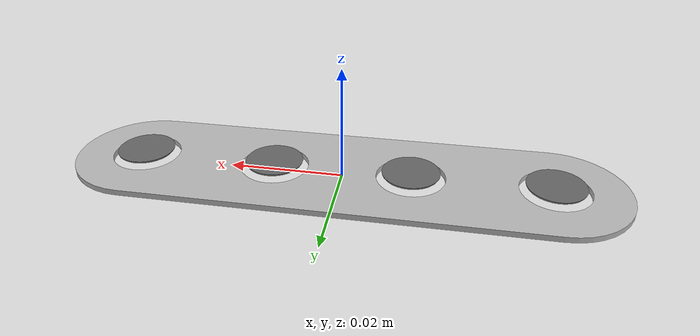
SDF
<?xml version="1.0" ?>
<sdf version="1.6">
  <model name="top_shell">
    <allow_auto_disable>true</allow_auto_disable>

    <link name="base_link">
      <inertial auto="true"/>

      <visual name="shell_visual">
        <geometry>
          <mesh>
            <uri>model://battery_module/meshes/visual/top_shell.glb</uri>
          </mesh>
        </geometry>
      </visual>

      <collision name="vg_2_collision">
        <density>2700</density>
        <geometry>
          <mesh>
            <uri>model://battery_module/meshes/collision/top_shell_vg_2.stl</uri>
          </mesh>
        </geometry>
      </collision>

      <collision name="vg_4_collision">
        <density>2700</density>
        <geometry>
          <mesh>
            <uri>model://battery_module/meshes/collision/top_shell_vg_4.stl</uri>
          </mesh>
        </geometry>
      </collision>

      <sensor name='contact_sensor' type='contact'>
        <update_rate>5</update_rate>
        <contact>
          <collision>vg_2_collision</collision>
        </contact>
      </sensor>

    </link>

    <link name="bead_1_link">
      <inertial auto="true"/>
      <visual name="bead_visual_1">
        <pose>-0.036 0 0.002 0 0 0</pose>
        <geometry>
          <mesh>
            <uri>model://battery_module/meshes/visual/weld_bead.stl</uri>
          </mesh>
        </geometry>
        <material>
          <diffuse>0.4 0.4 0.4 0.0</diffuse>
        </material>
      </visual>

      <collision name="bead_collision_1">
        <density>1</density>
        <pose>-0.036 0 0.003 0 0 0</pose>
        <geometry>
          <cylinder>
            <radius>0.006</radius>
            <length>0.002</length>
          </cylinder>
        </geometry>
      </collision>
    </link>

    <link name="bead_2_link">
      <inertial auto="true"/>
      <visual name="bead_visual_2">
        <pose>-0.012 0 0.002 0 0 0</pose>
        <geometry>
          <mesh>
            <uri>model://battery_module/meshes/visual/weld_bead.stl</uri>
          </mesh>
        </geometry>
        <material>
          <diffuse>0.4 0.4 0.4 0.0</diffuse>
        </material>
      </visual>

      <collision name="bead_collision_2">
        <density>1</density>
        <pose>-0.012 0 0.003 0 0 0</pose>
        <geometry>
          <cylinder>
            <radius>0.006</radius>
            <length>0.002</length>
          </cylinder>
        </geometry>
      </collision>
    </link>

    <link name="bead_3_link">
      <inertial auto="true"/>
      <visual name="bead_visual_3">
        <pose>0.012 0 0.002 0 0 0</pose>
        <geometry>
          <mesh>
            <uri>model://battery_module/meshes/visual/weld_bead.stl</uri>
          </mesh>
        </geometry>
        <material>
          <diffuse>0.4 0.4 0.4 0.0</diffuse>
        </material>
      </visual>

      <collision name="bead_collision_3">
        <density>1</density>
        <pose>0.012 0 0.003 0 0 0</pose>
        <geometry>
          <cylinder>
            <radius>0.006</radius>
            <length>0.002</length>
          </cylinder>
        </geometry>
      </collision>
    </link>

    <link name="bead_4_link">
      <inertial auto="true"/>
      <visual name="bead_visual_4">
        <pose>0.036 0 0.002 0 0 0</pose>
        <geometry>
          <mesh>
            <uri>model://battery_module/meshes/visual/weld_bead.stl</uri>
          </mesh>
        </geometry>
        <material>
          <diffuse>0.4 0.4 0.4 0.0</diffuse>
        </material>
      </visual>

      <collision name="bead_collision_4">
        <density>1</density>
        <pose>0.036 0 0.003 0 0 0</pose>
        <geometry>
          <cylinder>
            <radius>0.006</radius>
            <length>0.002</length>
          </cylinder>
        </geometry>
      </collision>
    </link>

    <joint name="bead_1_joint" type="fixed">
      <parent>base_link</parent>
      <child>bead_1_link</child>
    </joint>

    <joint name="bead_2_joint" type="fixed">
      <parent>base_link</parent>
      <child>bead_2_link</child>
    </joint>

    <joint name="bead_3_joint" type="fixed">
      <parent>base_link</parent>
      <child>bead_3_link</child>
    </joint>

    <joint name="bead_4_joint" type="fixed">
      <parent>base_link</parent>
      <child>bead_4_link</child>
    </joint>

    <link name="slot_1_link">
      <inertial auto="true"/>
      <pose> -0.036 0 0.005 0 0 0</pose>
      <collision name="collision">
        <density>1</density>
        <geometry>
          <cylinder>
            <radius>0.005</radius>
            <length>0.001</length>
          </cylinder>
        </geometry>
      </collision>
      <sensor name='collision_detector' type='contact'>
        <contact>
          <collision>collision</collision>
        </contact>
      </sensor>
    </link>

    <link name="slot_4_link">
      <inertial auto="true"/>
      <pose> 0.036 0 0.005 0 0 0</pose>
      <collision name="collision">
        <density>1</density>
        <geometry>
          <cylinder>
            <radius>0.005</radius>
            <length>0.001</length>
          </cylinder>
        </geometry>
      </collision>
      <sensor name='collision_detector' type='contact'>
        <contact>
          <collision>collision</collision>
        </contact>
      </sensor>
    </link>

    <joint name="slot_1_sensor_joint" type="prismatic">
      <parent>base_link</parent>
      <child>slot_1_link</child>
      <axis>
        <xyz>0 0 1</xyz>
        <limit>
          <lower>0</lower>
          <upper>0.001</upper>
          <effort>10</effort>
        </limit>
      </axis>
    </joint>

    <joint name="slot_4_sensor_joint" type="prismatic">
      <parent>base_link</parent>
      <child>slot_4_link</child>
      <axis>
        <xyz>0 0 1</xyz>
        <limit>
          <lower>0</lower>
          <upper>0.001</upper>
          <effort>10</effort>
        </limit>
      </axis>
    </joint>

    <plugin
      filename="libTopShellPlugin.so"
      name="ariac_plugins::TopShellPlugin">
    </plugin>
  </model>
</sdf>
